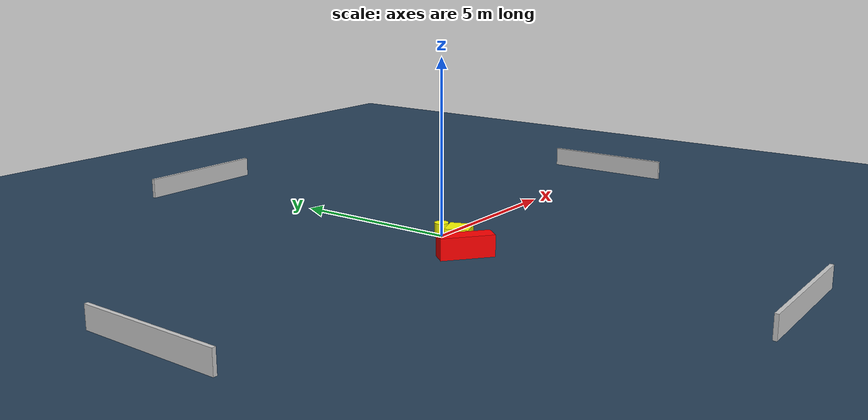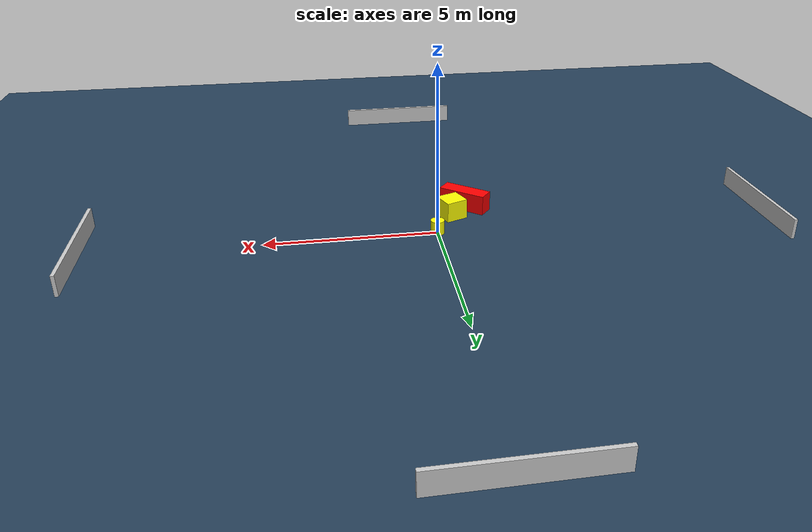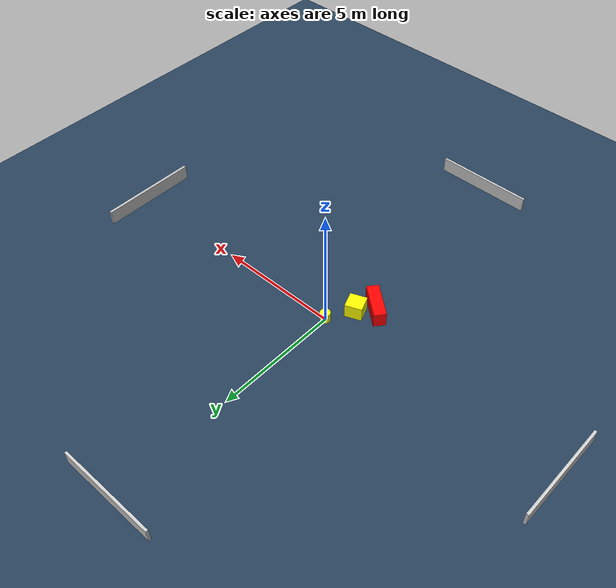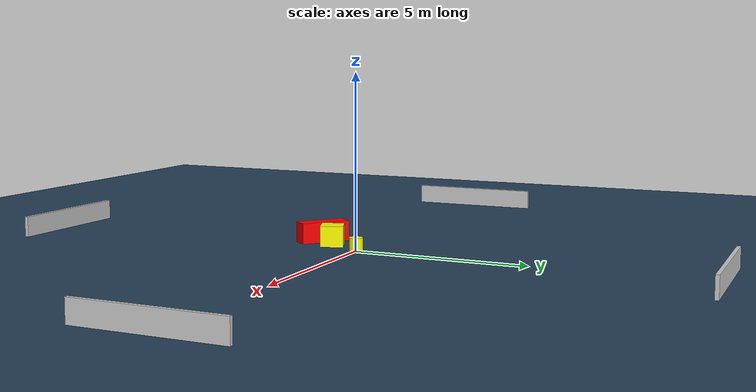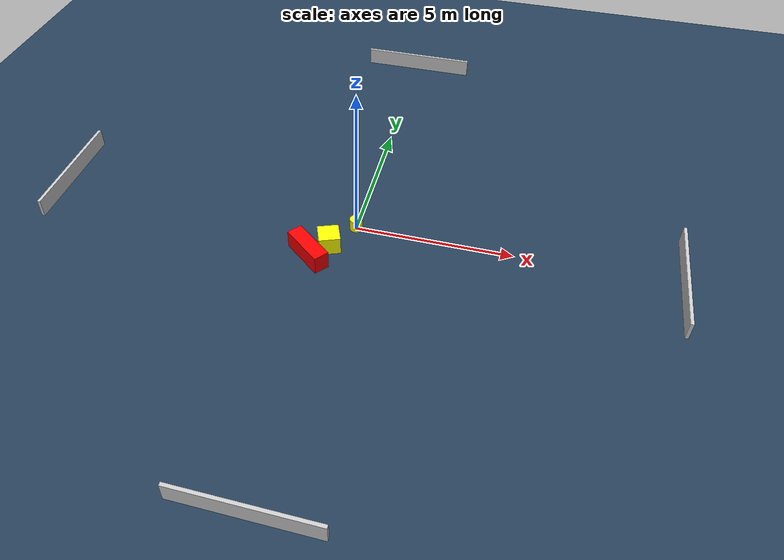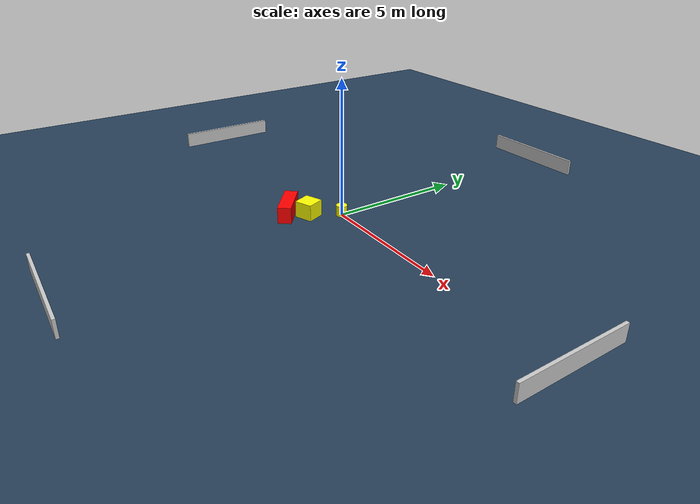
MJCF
<?xml version="1.0" ?>
<mujoco model="generated_environment">
  <option timestep="0.01" integrator="RK4" cone="elliptic"/>
  <default>
    <geom density="1"/>
  </default>
  <asset>
    <texture builtin="gradient" height="3072" name="skybox" rgb1="0.3 0.5 0.7" rgb2="0 0 0" type="skybox" width="512"/>
    <texture builtin="checker" height="300" name="groundplane" rgb1="0.2 0.3 0.4" rgb2="0.1 0.2 0.3" type="2d" width="300"/>
    <material name="groundplane" reflectance="0.2" texrepeat="5 5" texture="groundplane"/>
  </asset>
  <worldbody>
    <light dir="0 0 -1" directional="true" pos="0 0 1.5"/>
    <geom condim="3" friction="0.5 0.005 0.001" material="groundplane" name="floor" pos="0 0 0" size="0 0 0.05" type="plane"/>
    <body name="walls">
      <geom name="wall_1" condim="4" pos="-10.0 0.0 0.3" rgba="0.800000011920929 0.800000011920929 0.800000011920929 1.0" size="0.05 2.0 0.3" type="box"/>
      <geom name="wall_2" condim="4" pos="10.0 0.0 0.3" rgba="0.800000011920929 0.800000011920929 0.800000011920929 1.0" size="0.05 2.0 0.3" type="box"/>
      <geom name="wall_3" condim="4" pos="0.0 -10.0 0.3" rgba="0.800000011920929 0.800000011920929 0.800000011920929 1.0" size="2.0 0.05 0.3" type="box"/>
      <geom name="wall_4" condim="4" pos="0.0 10.0 0.3" rgba="0.800000011920929 0.800000011920929 0.800000011920929 1.0" size="2.0 0.05 0.3" type="box"/>
    </body>
    <body name="robot">
      <joint name="joint_x" type="slide" pos="0 0 0" axis="1 0 0"/>
      <joint name="joint_y" type="slide" pos="0 0 0" axis="0 1 0"/>
      <geom name="robot" type="cylinder" pos="0.0 0.0 0.2" size="0.2 0.2 0.0" mass="5.0" friction="1.0 0.005 0.0001" condim="4" rgba="1.0 1.0 0.0 1.0"/>
    </body>
    <body name="obstacle_1_movable">
      <geom name="obstacle_1_movable" condim="4" pos="-0.5998102215442441 -1.0267567048217798 0.3" euler="0 0 291.59240747275777" friction="0.0 0.005 0.001" rgba="1.0 1.0 0.0 1.0" size="0.32653267936442015 0.33482116101414927 0.3" type="box" mass="0.1"/>
      <joint type="free"/>
    </body>
    <body name="obstacle_2_static">
      <geom name="obstacle_2_static" condim="4" pos="-1.101849545906136 -1.5876965374894352 0.3" euler="0 0 231.07067298962943" friction="0.0 0.005 0.001" rgba="1.0 0.0 0.0 1.0" size="0.24409234057851084 0.7425744992308618 0.3" type="box"/>
    </body>
  </worldbody>
  <actuator>
    <motor name="actuator_x" joint="joint_x" gear="1" ctrlrange="-1 1"/>
    <motor name="actuator_y" joint="joint_y" gear="1" ctrlrange="-1 1"/>
  </actuator>
</mujoco>
